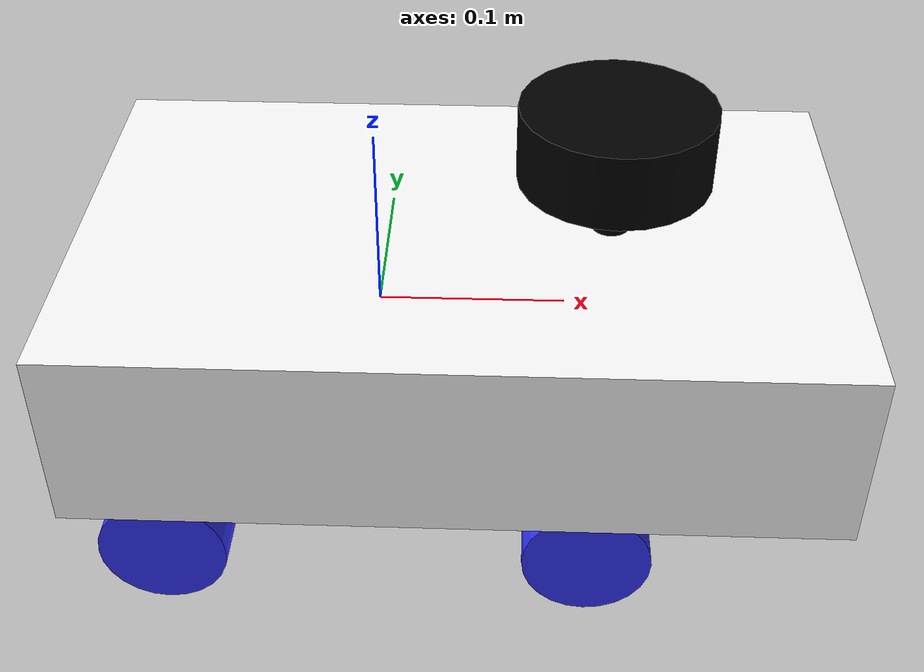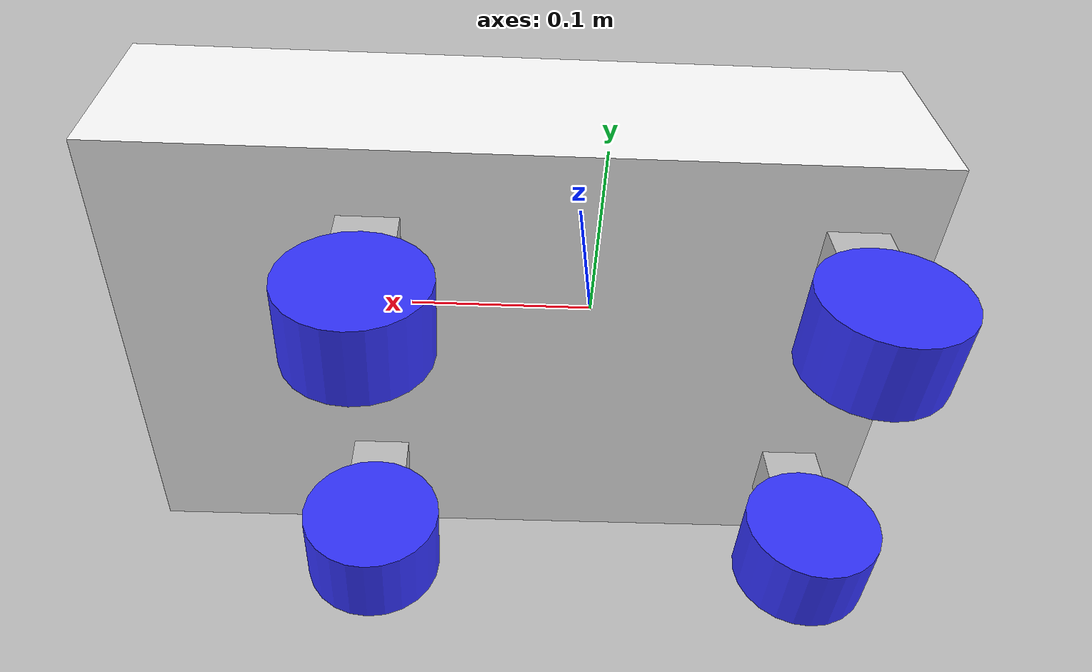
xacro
<?xml version="1.0"?>
<robot xmlns:xacro="http://www.ros.org/wiki/xacro" name="robot">

  <xacro:arg name="use_ros2_control" default="true"/>
  <xacro:arg name="sim_mode" default="false"/>

  <xacro:include filename="robot_core.xacro"/>
  <xacro:include filename="lidar.xacro"/>
  <xacro:include filename="imu.xacro"/>

  <xacro:if value="$(arg use_ros2_control)">
    <xacro:include filename="ros2_control.xacro"/>
  </xacro:if>

</robot>

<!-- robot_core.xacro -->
<robot xmlns:xacro="https://www.ros.org/wiki/xacro">

  <xacro:include filename="inertials_macros.xacro"/>
  <xacro:include filename="materials.xacro"/>

  <!-- Parameters -->
  <xacro:property name="body_length"  value="0.3048"/>
  <xacro:property name="body_width"   value="0.25"/>
  <xacro:property name="body_height"  value="0.10"/>
  <xacro:property name="drivetrain_height" value="0.02"/>
  <xacro:property name="wheel_radius" value="0.035"/>
  <xacro:property name="wheel_width"  value="0.0408"/>
  <xacro:property name="wheel_mass"   value="0.15"/>
  <xacro:property name="omni_wheel_mass" value="0.12"/>
  <xacro:property name="chassis_mass" value="2.0"/>
  <xacro:property name="ankle_mass"   value="0.05"/>

  <xacro:property name="x_front" value="0.115"/>
  <xacro:property name="x_mid"   value="0.0"/>
  <xacro:property name="x_back"  value="-0.115"/>
  <xacro:property name="y_left"  value="0.075"/>
  <xacro:property name="y_right" value="-0.075"/>

  <!-- base_link is the robot origin (center of chassis) -->
  <link name="base_link"/>
  <link name="camera0_link"/>

  <!-- CHASSIS (link frame at its center) -->
  <link name="chassis">
    <visual>
      <!-- visual origin relative to chassis link frame (center) -->
      <origin xyz="0.04445 0 0" rpy="0 0 0"/>
      <geometry>
        <box size="0.4 ${body_width} ${body_height}"/>
      </geometry>
      <material name="white"/>
    </visual>

    <collision>
      <origin xyz="0.04445 0 0" rpy="0 0 0"/>
      <geometry>
        <box size="0.4 ${body_width} ${body_height}"/>
      </geometry>
    </collision>

    <xacro:inertial_box mass="${chassis_mass}" x="${body_length}" y="${body_width}" z="${body_height}">
      <!-- inertia origin at chassis link frame (center) -->
      <origin xyz="0 0 0" rpy="0 0 0"/>
    </xacro:inertial_box>
  </link>

  <!-- attach chassis to base_link: chassis frame is coincident with base_link -->
  <joint name="chassis_joint" type="fixed">
    <parent link="base_link"/>
    <child  link="chassis"/>
    <origin xyz="0 0 0" rpy="0 0 0"/>
  </joint>

  <joint name="camera_joint" type="fixed">
    <parent link="base_link"/>
    <child link="camera0_link"/>
    <!-- TODO: CHANGE THIS!!!!!!!!!!!!!!!!!!!-->
    <origin xyz="0.16 0 0.03" rpy="0 0 0"/>
  </joint>
  <xacro:macro name="ankle_and_wheel" params="name xpos ypos is_omni">

    <!-- ankle_mount link: its link frame = wheel center (so visual/inertial are relative to that center) -->
    <link name="${name}_ankle_mount">
      <visual>
        <origin xyz="0 0 ${-drivetrain_height / 2.0}" rpy="0 0 0"/>
        <geometry>
          <box size="0.03 0.03 ${drivetrain_height}"/>
        </geometry>
        <material name="silver"/>
      </visual>

      <!-- inertial for the mount centered at the link frame -->
      <xacro:inertial_box mass="${ankle_mass}" x="0.03" y="0.03" z="${drivetrain_height}">
        <origin xyz="0 0 ${-drivetrain_height / 2.0}" rpy="0 0 0"/>
      </xacro:inertial_box>
    </link>

    <!-- ankle joint: parent = base_link, child = ankle_mount.
         origin places the ankle_mount frame at the wheel center in base_link coordinates. -->
    <joint name="${name}_ankle_joint" type="revolute">
      <parent link="base_link"/>
      <child  link="${name}_ankle_mount"/>
      <origin xyz="${xpos} ${ypos} ${-body_height/2.0}" rpy="0 0 0"/>
      <axis xyz="0 0 1"/>
      <limit lower="${-pi/2.0}" upper="${pi/2.0}" effort="5.0" velocity="2.0"/>
    </joint>

    <link name="${name}_wheel">
      <visual>
        <origin xyz="0 0 0" rpy="1.5708 0 0"/>
        <geometry>
          <cylinder radius="${wheel_radius}" length="${wheel_width}"/>
        </geometry>
        <material name="${is_omni == 'true' and 'black' or 'blue'}"/>
      </visual>

      <collision>
        <origin xyz="0 0 0" rpy="1.5708 0 0"/>
        <geometry>
          <cylinder radius="${wheel_radius}" length="${wheel_width}"/>
        </geometry>
      </collision>

      <xacro:inertial_cylinder mass="${is_omni == 'true' and omni_wheel_mass or wheel_mass}"
                              length="${wheel_width}" radius="${wheel_radius}">
        <origin xyz="0 0 0" rpy="1.5708 0 0"/>
      </xacro:inertial_cylinder>
    </link>

    <!-- wheel spin joint: parent = ankle_mount, child = wheel, origin set to 0 0 0 because wheel frame = ankle_mount frame (wheel center).
         axis is Y so wheel spins around its axle. -->
    <joint name="${name}_wheel_joint" type="continuous">
      <parent link="${name}_ankle_mount"/>
      <child  link="${name}_wheel"/>
      <origin xyz="0 0 ${-drivetrain_height - wheel_radius}" rpy="0 0 0"/>
      <axis xyz="0 1 0"/>
    </joint>
  </xacro:macro>

  <!-- FRONT LEFT / RIGHT (differential, with ankle) -->
  <xacro:ankle_and_wheel name="front_left"  xpos="${x_front}" ypos="${y_left}"  is_omni="false"/>
  <xacro:ankle_and_wheel name="front_right" xpos="${x_front}" ypos="${y_right}" is_omni="false"/>

  <!-- MID wheels: do not steer. Use a fixed mount whose link frame is placed at the wheel center,
       and a wheel joint from that mount to the wheel where origin=0 0 0. -->
  <!-- MID LEFT -->

  <!-- MID RIGHT -->

  <!-- BACK LEFT / RIGHT -->
  <xacro:ankle_and_wheel name="back_left"  xpos="${x_back}" ypos="${y_left}"  is_omni="false"/>
  <xacro:ankle_and_wheel name="back_right" xpos="${x_back}" ypos="${y_right}" is_omni="false"/>

</robot>

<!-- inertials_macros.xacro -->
<robot xmlns:xacro="http://www.ros.org/wiki/xacro">

  <!-- Specify some standard inertial calculations https://en.wikipedia.org/wiki/List_of_moments_of_inertia -->

  <!-- Inertial primitives macros. Parameters use SI units (m, kg). -->
  <xacro:macro name="inertial_sphere" params="mass radius *origin">
    <inertial>
      <xacro:insert_block name="origin"/>
      <mass value="${mass}"/>
      <!-- sphere: I = 2/5 m r^2 -->
      <inertia ixx="${(2.0/5.0) * mass * (radius*radius)}" ixy="0.0" ixz="0.0"
               iyy="${(2.0/5.0) * mass * (radius*radius)}" iyz="0.0"
               izz="${(2.0/5.0) * mass * (radius*radius)}"/>
    </inertial>
  </xacro:macro>

  <xacro:macro name="inertial_box" params="mass x y z *origin">
    <inertial>
      <xacro:insert_block name="origin"/>
      <mass value="${mass}"/>
      <!-- rectangular solid: Ixx = 1/12 m (y^2+z^2) etc -->
      <inertia ixx="${(1.0/12.0) * mass * (y*y + z*z)}" ixy="0.0" ixz="0.0"
               iyy="${(1.0/12.0) * mass * (x*x + z*z)}" iyz="0.0"
               izz="${(1.0/12.0) * mass * (x*x + y*y)}"/>
    </inertial>
  </xacro:macro>

  <xacro:macro name="inertial_cylinder" params="mass length radius *origin">
    <inertial>
      <xacro:insert_block name="origin"/>
      <mass value="${mass}"/>
      <!-- cylinder aligned with Z (length along Z):
           Ixx = Iyy = 1/12 m (3 r^2 + L^2)
           Izz = 1/2 m r^2 -->
      <inertia ixx="${(1.0/12.0) * mass * (3.0*radius*radius + length*length)}" ixy="0.0" ixz="0.0"
               iyy="${(1.0/12.0) * mass * (3.0*radius*radius + length*length)}" iyz="0.0"
               izz="${(1.0/2.0) * mass * (radius*radius)}"/>
    </inertial>
  </xacro:macro>

</robot>

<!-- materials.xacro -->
<robot xmlns:xacro="http://www.ros.org/wiki/xacro">

  <material name="white">
    <color rgba="1 1 1 1"/>
  </material>

  <material name="orange">
    <color rgba="1 0.3 0.1 1"/>
  </material>

  <material name="blue">
    <color rgba="0.2 0.2 1 1"/>
  </material>

  <material name="black">
    <color rgba="0 0 0 1"/>
  </material>

  <material name="silver">
    <color rgba="0.75 0.75 0.75 1"/>
  </material>

</robot>

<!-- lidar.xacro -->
<robot xmlns:xacro="http://www.ros.org/wiki/xacro" >

    <joint name="laser_joint" type="fixed">
        <parent link="base_link"/>
        <child link="laser_frame"/>
        <origin xyz="0.122 0 0.100" rpy="0 0 0"/>
    </joint>

    <link name="laser_frame">
        <visual>
            <geometry>
                <cylinder radius="0.05" length="0.04"/>
            </geometry>
            <material name="black"/>
        </visual>
        <visual>
            <origin xyz="0 0 -0.05"/>
            <geometry>
                <cylinder radius="0.01" length="0.1"/>
            </geometry>
            <material name="black"/>
        </visual>
        <collision>
            <geometry>
                <cylinder radius="0.05" length="0.04"/>
            </geometry>
        </collision>
        <xacro:inertial_cylinder mass="0.1" length="0.04" radius="0.05">
            <origin xyz="0 0 0" rpy="0 0 0"/>
        </xacro:inertial_cylinder>
    </link>

    <gazebo reference="laser_frame">
        <material>Gazebo/Black</material>

        <sensor name='gpu_lidar' type='gpu_lidar'>
            <pose relative_to='laser_frame'>0 0 0 0 0 0</pose>
            <topic>lidar</topic>
            <update_rate>10</update_rate>
            <ray>
                <scan>
                    <horizontal>
                        <samples>640</samples>
                        <resolution>1</resolution>
                        <min_angle>-1.396263</min_angle>
                        <max_angle>1.396263</max_angle>
                    </horizontal>
                    <vertical>
                        <samples>1</samples>
                        <resolution>0.01</resolution>
                        <min_angle>0</min_angle>
                        <max_angle>0</max_angle>
                    </vertical>
                </scan>
                <range>
                    <min>0.08</min>
                    <max>10.0</max>
                    <resolution>0.01</resolution>
                </range>
            </ray>
            <always_on>1</always_on>
            <visualize>true</visualize>
        </sensor>
    </gazebo>

</robot>
